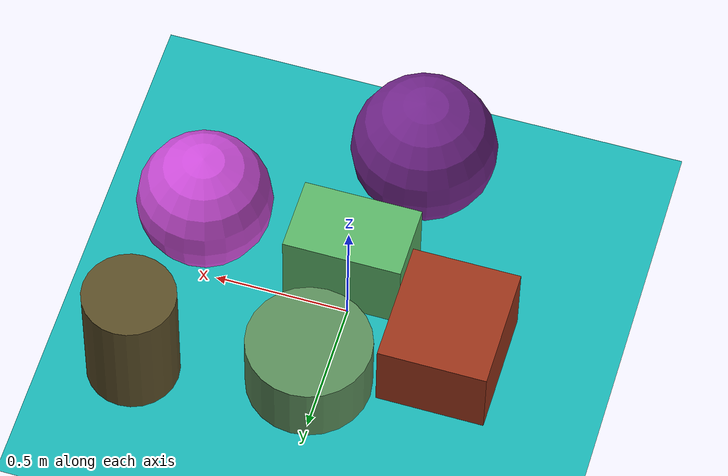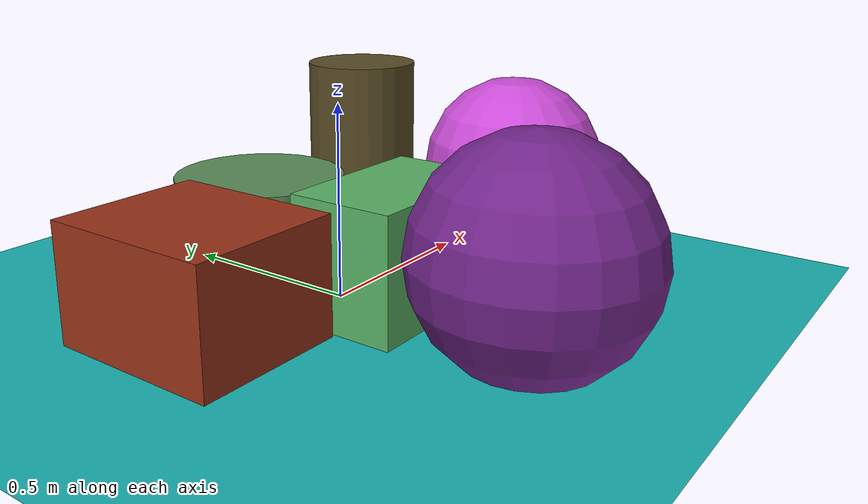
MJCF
<mujoco>
   <asset>
<texture type="skybox" builtin="gradient" rgb1="0.9 0.3 0.4" rgb2="0.5 0.6 0.3" width="256" height="256"/>
<texture name="gradient_0" builtin="gradient" rgb1="0.9 0.4 0.9" rgb2="0.7 0.2 0.8" width="200" height="200"/>
<texture name="gradient_1" builtin="gradient" rgb1="0.8 0.2 0.8" rgb2="0.1 0.1 0.3" width="200" height="200"/>
<texture name="checker_2" builtin="checker" rgb1="0.2 0.4 0.7" rgb2="0.5 0.7 0.0" width="200" height="200"/>
<texture name="checker_3" builtin="checker" rgb1="0.0 0.2 0.2" rgb2="0.7 0.4 0.1" width="200" height="200"/>
<texture name="flat_4" builtin="flat" rgb1="0.6 0.2 0.1" rgb2="0.6 0.2 0.1"  width="200" height="200"/>
<texture name="checker_5" builtin="checker" rgb1="0.3 0.7 0.3" rgb2="0.4 0.7 0.5" width="200" height="200"/><material name="gradient_0_mat" reflectance="0" texture="gradient_0" texuniform="true"/>
<material name="gradient_1_mat" reflectance="0" texture="gradient_1" texuniform="true"/>
<material name="checker_2_mat" reflectance="0" texrepeat="3 3" texture="checker_2" texuniform="false" />
<material name="checker_3_mat" reflectance="0" texrepeat="10 10" texture="checker_3" texuniform="false" />
<material name="flat_4_mat" reflectance="0" texture="flat_4" texuniform="true"/>
<material name="checker_5_mat" reflectance="0" texrepeat="6 6" texture="checker_5" texuniform="false" />
   </asset>

   <worldbody>
      <light diffuse=".9 .9 .9" pos="0 0 3" dir="0 0 -1"/>
     <geom type="plane" size="1 1 0.1" rgba="0.1 0.7 0.7 1"/>
<geom type="sphere" pos="0.59 -0.16 0.25" size="0.25 0.25 0.25" material="gradient_0_mat" />
<geom type="sphere" pos="-0.11 -0.6 0.27" size="0.27 0.27 0.27" material="gradient_1_mat" />
<geom type="cylinder" pos="0.05 0.32 0.13" size="0.23 0.13 0.13" material="checker_2_mat" />
<geom type="cylinder" pos="0.67 0.45 0.24" size="0.17 0.24 0.24" material="checker_3_mat" />
<geom type="box" pos="-0.4 0.09 0.15" size="0.2 0.23 0.15" material="flat_4_mat" />
<geom type="box" pos="0.03 -0.15 0.16" size="0.22 0.14 0.16" material="checker_5_mat" /><camera euler="60 0 180" fovy="60" name="camera2" pos="0.1 -1.5 1"></camera>   </worldbody>
</mujoco>
